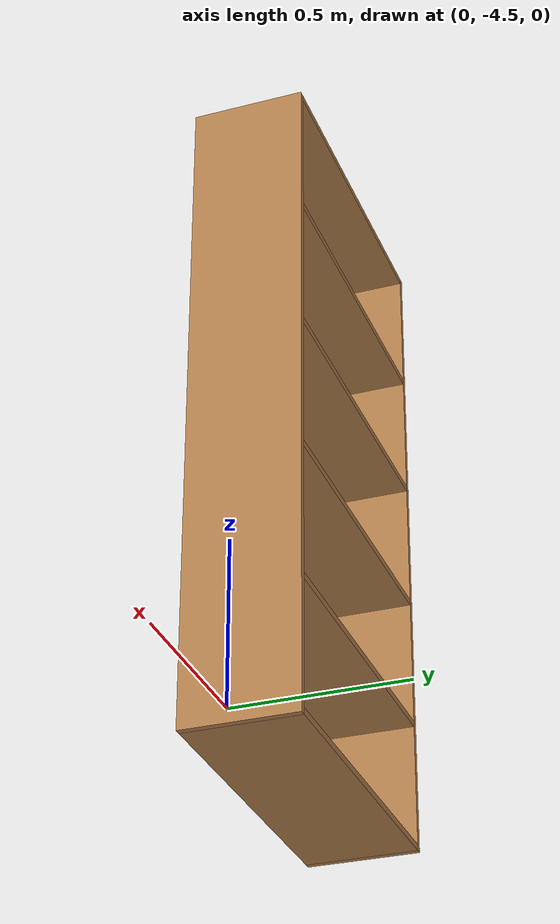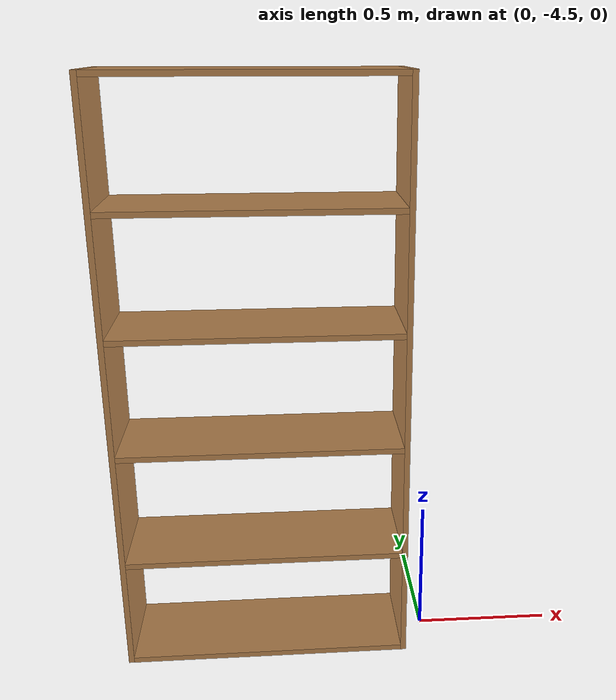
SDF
<?xml version="1.0" ?>
<sdf version='1.4'>
  <model name='estanteria_2'>
    <link name='estanteria_link'>
      <pose>0 0 0 0 -0 0</pose>
      <inertial>
        <pose>0 0 1.046 0 -0 0</pose>
        <mass>10</mass>
        <inertia>
          <ixx>3.12544</ixx>
          <ixy>0</ixy>
          <ixz>0</ixz>
          <iyy>4.16584</iyy>
          <iyz>0</iyz>
          <izz>1.1204</izz>
        </inertia>
      </inertial>
      <collision name='estanteria_link_collision'>
        <pose>0 0 0.01 0 -0 0</pose>
        <geometry>
          <box>
            <size>1 0.35 0.02</size>
          </box>
        </geometry>
        <surface>
          <contact>
            <ode/>
          </contact>
          <friction>
            <ode>
              <mu>100</mu>
              <mu2>100</mu2>
            </ode>
          </friction>
          <bounce/>
        </surface>
        <max_contacts>10</max_contacts>
      </collision>
      <collision name='estanteria_link_collision_basal_1_link'>
        <pose>0 0 0.41 0 -0 0</pose>
        <geometry>
          <box>
            <size>1 0.35 0.02</size>
          </box>
        </geometry>
        <surface>
          <contact>
            <ode/>
          </contact>
          <friction>
            <ode>
              <mu>100</mu>
              <mu2>100</mu2>
            </ode>
          </friction>
          <bounce/>
        </surface>
        <surface>
          <contact>
            <ode/>
          </contact>
          <friction>
            <ode>
              <mu>100</mu>
              <mu2>100</mu2>
            </ode>
          </friction>
        </surface>
        <max_contacts>10</max_contacts>
      </collision>
      <collision name='estanteria_link_collision_basal_2_link'>
        <pose>0 0 0.83 0 -0 0</pose>
        <geometry>
          <box>
            <size>1 0.35 0.02</size>
          </box>
        </geometry>
        <surface>
          <contact>
            <ode/>
          </contact>
          <friction>
            <ode>
              <mu>100</mu>
              <mu2>100</mu2>
            </ode>
          </friction>
          <bounce/>
        </surface>
        <surface>
          <contact>
            <ode/>
          </contact>
          <friction>
            <ode>
              <mu>100</mu>
              <mu2>100</mu2>
            </ode>
          </friction>
        </surface>
        <max_contacts>10</max_contacts>
      </collision>
      <collision name='estanteria_link_collision_basal_3_link'>
        <pose>0 0 1.25 0 -0 0</pose>
        <geometry>
          <box>
            <size>1 0.35 0.02</size>
          </box>
        </geometry>
        <surface>
          <contact>
            <ode/>
          </contact>
          <friction>
            <ode>
              <mu>100</mu>
              <mu2>100</mu2>
            </ode>
          </friction>
          <bounce/>
        </surface>
        <surface>
          <contact>
            <ode/>
          </contact>
          <friction>
            <ode>
              <mu>100</mu>
              <mu2>100</mu2>
            </ode>
          </friction>
        </surface>
        <max_contacts>10</max_contacts>
      </collision>
      <collision name='estanteria_link_collision_basal_4_link'>
        <pose>0 0 1.67 0 -0 0</pose>
        <geometry>
          <box>
            <size>1 0.35 0.02</size>
          </box>
        </geometry>
        <surface>
          <contact>
            <ode/>
          </contact>
          <friction>
            <ode>
              <mu>100</mu>
              <mu2>100</mu2>
            </ode>
          </friction>
          <bounce/>
        </surface>
        <surface>
          <contact>
            <ode/>
          </contact>
          <friction>
            <ode>
              <mu>100</mu>
              <mu2>100</mu2>
            </ode>
          </friction>
        </surface>
        <max_contacts>10</max_contacts>
      </collision>
      <collision name='estanteria_link_collision_basal_5_link'>
        <pose>0 0 2.09 0 -0 0</pose>
        <geometry>
          <box>
            <size>1 0.35 0.02</size>
          </box>
        </geometry>
        <surface>
          <contact>
            <ode/>
          </contact>
          <friction>
            <ode>
              <mu>100</mu>
              <mu2>100</mu2>
            </ode>
          </friction>
          <bounce/>
        </surface>
        <surface>
          <contact>
            <ode/>
          </contact>
          <friction>
            <ode>
              <mu>100</mu>
              <mu2>100</mu2>
            </ode>
          </friction>
        </surface>
        <max_contacts>10</max_contacts>
      </collision>
      <collision name='estanteria_link_collision_lateral_1_link'>
        <pose>0.51 0 1.05 0 -0 0</pose>
        <geometry>
          <box>
            <size>0.02 0.35 2.1</size>
          </box>
        </geometry>
        <surface>
          <contact>
            <ode/>
          </contact>
          <friction>
            <ode>
              <mu>100</mu>
              <mu2>100</mu2>
            </ode>
          </friction>
          <bounce/>
        </surface>
        <surface>
          <contact>
            <ode/>
          </contact>
          <friction>
            <ode>
              <mu>100</mu>
              <mu2>100</mu2>
            </ode>
          </friction>
        </surface>
        <max_contacts>10</max_contacts>
      </collision>
      <collision name='estanteria_link_collision_lateral_2_link'>
        <pose>-0.51 0 1.05 0 -0 0</pose>
        <geometry>
          <box>
            <size>0.02 0.35 2.1</size>
          </box>
        </geometry>
        <surface>
          <contact>
            <ode/>
          </contact>
          <friction>
            <ode>
              <mu>100</mu>
              <mu2>100</mu2>
            </ode>
          </friction>
          <bounce/>
        </surface>
        <surface>
          <contact>
            <ode/>
          </contact>
          <friction>
            <ode>
              <mu>100</mu>
              <mu2>100</mu2>
            </ode>
          </friction>
        </surface>
        <max_contacts>10</max_contacts>
      </collision>
      <visual name='estanteria_link_visual'>
        <pose>0 0 0.01 0 -0 0</pose>
        <geometry>
          <box>
            <size>1 0.35 0.02</size>
          </box>
        </geometry>
        <material>
          <script>
            <name>Gazebo/Wood</name>
            <uri>__default__</uri>
          </script>
        </material>
      </visual>
      <visual name='estanteria_link_visual_basal_1_link'>
        <pose>0 0 0.41 0 -0 0</pose>
        <geometry>
          <box>
            <size>1 0.35 0.02</size>
          </box>
        </geometry>
        <material>
          <script>
            <name>Gazebo/Wood</name>
            <uri>__default__</uri>
          </script>
        </material>
      </visual>
      <visual name='estanteria_link_visual_basal_2_link'>
        <pose>0 0 0.83 0 -0 0</pose>
        <geometry>
          <box>
            <size>1 0.35 0.02</size>
          </box>
        </geometry>
        <material>
          <script>
            <name>Gazebo/Wood</name>
            <uri>__default__</uri>
          </script>
        </material>
      </visual>
      <visual name='estanteria_link_visual_basal_3_link'>
        <pose>0 0 1.25 0 -0 0</pose>
        <geometry>
          <box>
            <size>1 0.35 0.02</size>
          </box>
        </geometry>
        <material>
          <script>
            <name>Gazebo/Wood</name>
            <uri>__default__</uri>
          </script>
        </material>
      </visual>
      <visual name='estanteria_link_visual_basal_4_link'>
        <pose>0 0 1.67 0 -0 0</pose>
        <geometry>
          <box>
            <size>1 0.35 0.02</size>
          </box>
        </geometry>
        <material>
          <script>
            <name>Gazebo/Wood</name>
            <uri>__default__</uri>
          </script>
        </material>
      </visual>
      <visual name='estanteria_link_visual_basal_5_link'>
        <pose>0 0 2.09 0 -0 0</pose>
        <geometry>
          <box>
            <size>1 0.35 0.02</size>
          </box>
        </geometry>
        <material>
          <script>
            <name>Gazebo/Wood</name>
            <uri>__default__</uri>
          </script>
        </material>
      </visual>
      <visual name='estanteria_link_visual_lateral_1_link'>
        <pose>0.51 0 1.05 0 -0 0</pose>
        <geometry>
          <box>
            <size>0.02 0.35 2.1</size>
          </box>
        </geometry>
        <material>
          <script>
            <name>Gazebo/Wood</name>
            <uri>__default__</uri>
          </script>
        </material>
      </visual>
      <visual name='estanteria_link_visual_lateral_2_link'>
        <pose>-0.51 0 1.05 0 -0 0</pose>
        <geometry>
          <box>
            <size>0.02 0.35 2.1</size>
          </box>
        </geometry>
        <material>
          <script>
            <name>Gazebo/Wood</name>
            <uri>__default__</uri>
          </script>
        </material>
      </visual>
      <velocity_decay>
        <linear>0</linear>
        <angular>0</angular>
      </velocity_decay>
      <velocity_decay>
        <linear>0</linear>
        <angular>0</angular>
      </velocity_decay>
      <velocity_decay>
        <linear>0</linear>
        <angular>0</angular>
      </velocity_decay>
      <velocity_decay>
        <linear>0</linear>
        <angular>0</angular>
      </velocity_decay>
      <velocity_decay>
        <linear>0</linear>
        <angular>0</angular>
      </velocity_decay>
      <velocity_decay>
        <linear>0</linear>
        <angular>0</angular>
      </velocity_decay>
      <velocity_decay>
        <linear>0</linear>
        <angular>0</angular>
      </velocity_decay>
      <gravity>1</gravity>
      <velocity_decay>
        <linear>0</linear>
        <angular>0</angular>
      </velocity_decay>
      <self_collide>1</self_collide>
      <kinematic>0</kinematic>
    </link>
    <pose>-0.6 -4.5 0 0 -0 0</pose>
    <static>0</static>
  </model>
</sdf>
